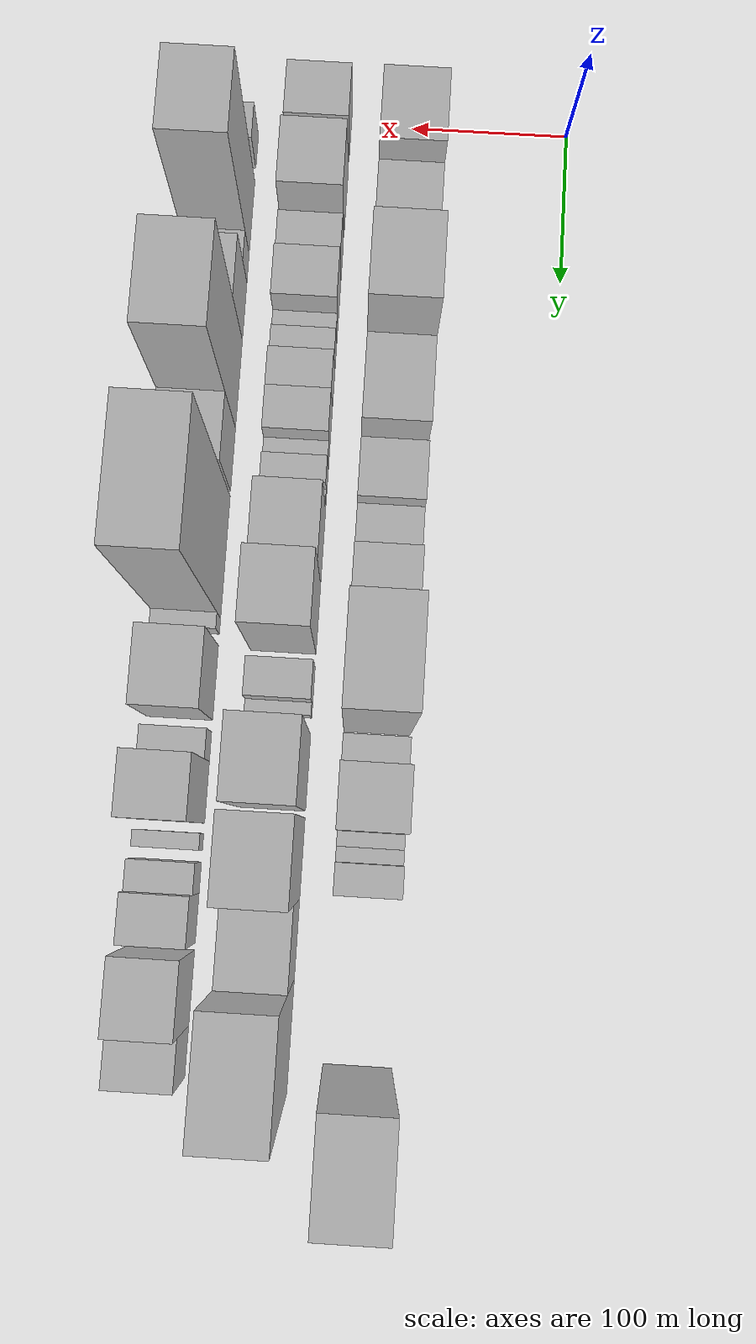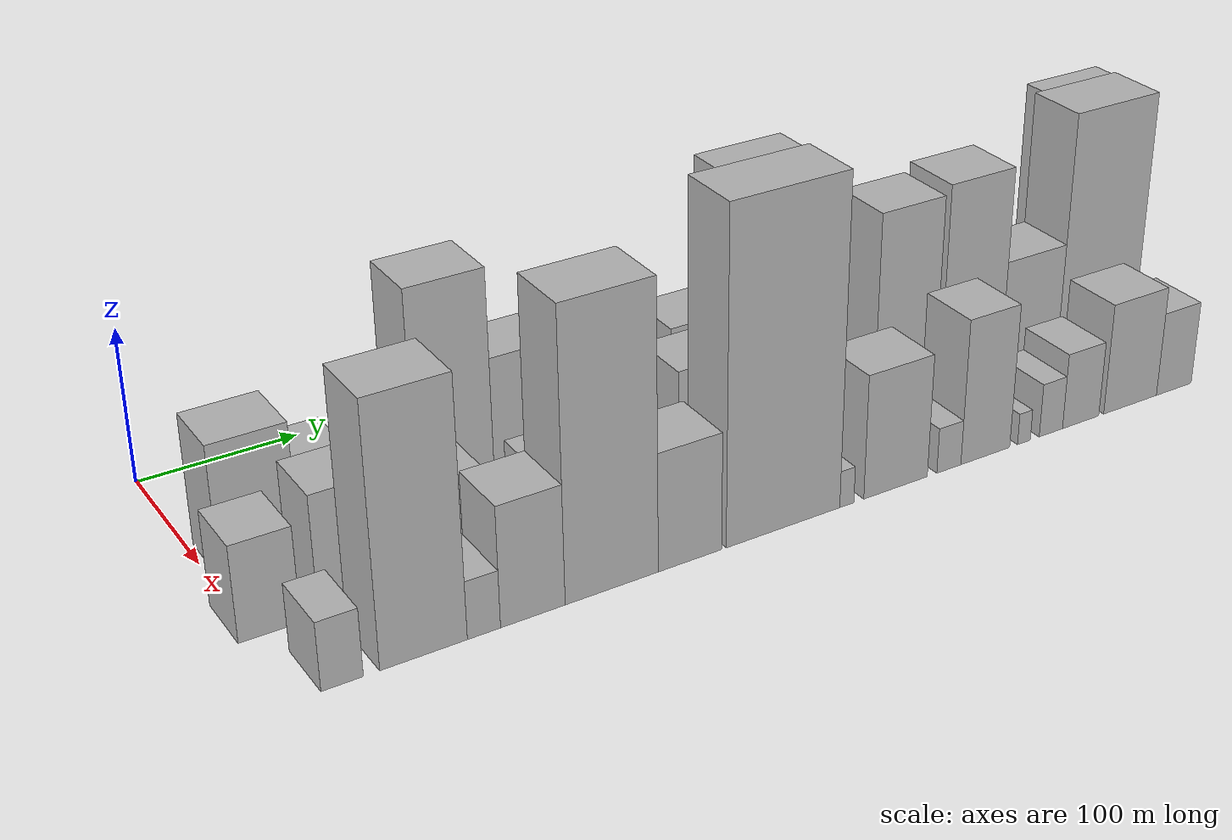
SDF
<sdf version="1.6">
 <world name="default">
  <model name="building_21">
   <static>1</static>
   <pose>100.0000 27.5766 0 0.000000 0.000000 0.000000</pose>
   <link name="link">
    <pose>0 0 42.00 0 0 0</pose>
    <collision name="collision"><geometry><box><size>40.0000 46.5783 84.0000</size></box></geometry></collision>
    <visual name="visual">
     <cast_shadows>0</cast_shadows>
     <geometry><box><size>40.0000 46.5783 84.0000</size></box></geometry>
     <material>
      <script>
       <uri>model://HANNAS_wall/materials/scripts</uri>
       <uri>model://HANNAS_wall/materials/textures</uri>
       <name>vrc/HANNAS_wall</name>
      </script>
     </material>
    </visual>
   </link>
  </model>
  <model name="building_22">
   <static>1</static>
   <pose>100.0000 67.4053 0 0.000000 0.000000 0.000000</pose>
   <link name="link">
    <pose>0 0 28.50 0 0 0</pose>
    <collision name="collision"><geometry><box><size>40.0000 33.0792 57.0000</size></box></geometry></collision>
    <visual name="visual">
     <cast_shadows>0</cast_shadows>
     <geometry><box><size>40.0000 33.0792 57.0000</size></box></geometry>
     <material>
      <script>
       <uri>model://HANNAS_wall/materials/scripts</uri>
       <uri>model://HANNAS_wall/materials/textures</uri>
       <name>vrc/HANNAS_wall</name>
      </script>
     </material>
    </visual>
   </link>
  </model>
  <model name="building_23">
   <static>1</static>
   <pose>100.0000 96.4477 0 0.000000 0.000000 0.000000</pose>
   <link name="link">
    <pose>0 0 21.00 0 0 0</pose>
    <collision name="collision"><geometry><box><size>40.0000 25.0056 42.0000</size></box></geometry></collision>
    <visual name="visual">
     <cast_shadows>0</cast_shadows>
     <geometry><box><size>40.0000 25.0056 42.0000</size></box></geometry>
     <material>
      <script>
       <uri>model://HANNAS_wall/materials/scripts</uri>
       <uri>model://HANNAS_wall/materials/textures</uri>
       <name>vrc/HANNAS_wall</name>
      </script>
     </material>
    </visual>
   </link>
  </model>
  <model name="building_24">
   <static>1</static>
   <pose>100.0000 112.5358 0 0.000000 0.000000 0.000000</pose>
   <link name="link">
    <pose>0 0 7.50 0 0 0</pose>
    <collision name="collision"><geometry><box><size>40.0000 7.1708 15.0000</size></box></geometry></collision>
    <visual name="visual">
     <cast_shadows>0</cast_shadows>
     <geometry><box><size>40.0000 7.1708 15.0000</size></box></geometry>
     <material>
      <script>
       <uri>model://HANNAS_wall/materials/scripts</uri>
       <uri>model://HANNAS_wall/materials/textures</uri>
       <name>vrc/HANNAS_wall</name>
      </script>
     </material>
    </visual>
   </link>
  </model>
  <model name="building_25">
   <static>1</static>
   <pose>100.0000 146.9329 0 0.000000 0.000000 0.000000</pose>
   <link name="link">
    <pose>0 0 72.00 0 0 0</pose>
    <collision name="collision"><geometry><box><size>40.0000 49.6233 144.0000</size></box></geometry></collision>
    <visual name="visual">
     <cast_shadows>0</cast_shadows>
     <geometry><box><size>40.0000 49.6233 144.0000</size></box></geometry>
     <material>
      <script>
       <uri>model://HANNAS_wall/materials/scripts</uri>
       <uri>model://HANNAS_wall/materials/textures</uri>
       <name>vrc/HANNAS_wall</name>
      </script>
     </material>
    </visual>
   </link>
  </model>
  <model name="building_26">
   <static>1</static>
   <pose>100.0000 197.2676 0 0.000000 0.000000 0.000000</pose>
   <link name="link">
    <pose>0 0 43.50 0 0 0</pose>
    <collision name="collision"><geometry><box><size>40.0000 51.0462 87.0000</size></box></geometry></collision>
    <visual name="visual">
     <cast_shadows>0</cast_shadows>
     <geometry><box><size>40.0000 51.0462 87.0000</size></box></geometry>
     <material>
      <script>
       <uri>model://HANNAS_wall/materials/scripts</uri>
       <uri>model://HANNAS_wall/materials/textures</uri>
       <name>vrc/HANNAS_wall</name>
      </script>
     </material>
    </visual>
   </link>
  </model>
  <model name="building_27">
   <static>1</static>
   <pose>100.0000 245.4375 0 0.000000 0.000000 0.000000</pose>
   <link name="link">
    <pose>0 0 33.00 0 0 0</pose>
    <collision name="collision"><geometry><box><size>40.0000 35.2936 66.0000</size></box></geometry></collision>
    <visual name="visual">
     <cast_shadows>0</cast_shadows>
     <geometry><box><size>40.0000 35.2936 66.0000</size></box></geometry>
     <material>
      <script>
       <uri>model://HANNAS_wall/materials/scripts</uri>
       <uri>model://HANNAS_wall/materials/textures</uri>
       <name>vrc/HANNAS_wall</name>
      </script>
     </material>
    </visual>
   </link>
  </model>
  <model name="building_28">
   <static>1</static>
   <pose>100.0000 277.1267 0 0.000000 0.000000 0.000000</pose>
   <link name="link">
    <pose>0 0 24.00 0 0 0</pose>
    <collision name="collision"><geometry><box><size>40.0000 28.0849 48.0000</size></box></geometry></collision>
    <visual name="visual">
     <cast_shadows>0</cast_shadows>
     <geometry><box><size>40.0000 28.0849 48.0000</size></box></geometry>
     <material>
      <script>
       <uri>model://HANNAS_wall/materials/scripts</uri>
       <uri>model://HANNAS_wall/materials/textures</uri>
       <name>vrc/HANNAS_wall</name>
      </script>
     </material>
    </visual>
   </link>
  </model>
  <model name="building_29">
   <static>1</static>
   <pose>100.0000 311.7803 0 0.000000 0.000000 0.000000</pose>
   <link name="link">
    <pose>0 0 36.00 0 0 0</pose>
    <collision name="collision"><geometry><box><size>40.0000 41.2224 72.0000</size></box></geometry></collision>
    <visual name="visual">
     <cast_shadows>0</cast_shadows>
     <geometry><box><size>40.0000 41.2224 72.0000</size></box></geometry>
     <material>
      <script>
       <uri>model://HANNAS_wall/materials/scripts</uri>
       <uri>model://HANNAS_wall/materials/textures</uri>
       <name>vrc/HANNAS_wall</name>
      </script>
     </material>
    </visual>
   </link>
  </model>
  <model name="building_30">
   <static>1</static>
   <pose>100.0000 363.3565 0 0.000000 0.000000 0.000000</pose>
   <link name="link">
    <pose>0 0 79.50 0 0 0</pose>
    <collision name="collision"><geometry><box><size>40.0000 61.9299 159.0000</size></box></geometry></collision>
    <visual name="visual">
     <cast_shadows>0</cast_shadows>
     <geometry><box><size>40.0000 61.9299 159.0000</size></box></geometry>
     <material>
      <script>
       <uri>model://HANNAS_wall/materials/scripts</uri>
       <uri>model://HANNAS_wall/materials/textures</uri>
       <name>vrc/HANNAS_wall</name>
      </script>
     </material>
    </visual>
   </link>
  </model>
  <model name="building_31">
   <static>1</static>
   <pose>100.0000 406.9446 0 0.000000 0.000000 0.000000</pose>
   <link name="link">
    <pose>0 0 16.50 0 0 0</pose>
    <collision name="collision"><geometry><box><size>40.0000 19.2463 33.0000</size></box></geometry></collision>
    <visual name="visual">
     <cast_shadows>0</cast_shadows>
     <geometry><box><size>40.0000 19.2463 33.0000</size></box></geometry>
     <material>
      <script>
       <uri>model://HANNAS_wall/materials/scripts</uri>
       <uri>model://HANNAS_wall/materials/textures</uri>
       <name>vrc/HANNAS_wall</name>
      </script>
     </material>
    </visual>
   </link>
  </model>
  <model name="building_32">
   <static>1</static>
   <pose>100.0000 435.1259 0 0.000000 0.000000 0.000000</pose>
   <link name="link">
    <pose>0 0 48.00 0 0 0</pose>
    <collision name="collision"><geometry><box><size>40.0000 37.1163 96.0000</size></box></geometry></collision>
    <visual name="visual">
     <cast_shadows>0</cast_shadows>
     <geometry><box><size>40.0000 37.1163 96.0000</size></box></geometry>
     <material>
      <script>
       <uri>model://HANNAS_wall/materials/scripts</uri>
       <uri>model://HANNAS_wall/materials/textures</uri>
       <name>vrc/HANNAS_wall</name>
      </script>
     </material>
    </visual>
   </link>
  </model>
  <model name="building_33">
   <static>1</static>
   <pose>100.0000 458.2078 0 0.000000 0.000000 0.000000</pose>
   <link name="link">
    <pose>0 0 10.50 0 0 0</pose>
    <collision name="collision"><geometry><box><size>40.0000 9.0475 21.0000</size></box></geometry></collision>
    <visual name="visual">
     <cast_shadows>0</cast_shadows>
     <geometry><box><size>40.0000 9.0475 21.0000</size></box></geometry>
     <material>
      <script>
       <uri>model://HANNAS_wall/materials/scripts</uri>
       <uri>model://HANNAS_wall/materials/textures</uri>
       <name>vrc/HANNAS_wall</name>
      </script>
     </material>
    </visual>
   </link>
  </model>
  <model name="building_34">
   <static>1</static>
   <pose>100.0000 467.2337 0 0.000000 0.000000 0.000000</pose>
   <link name="link">
    <pose>0 0 10.50 0 0 0</pose>
    <collision name="collision"><geometry><box><size>40.0000 9.0043 21.0000</size></box></geometry></collision>
    <visual name="visual">
     <cast_shadows>0</cast_shadows>
     <geometry><box><size>40.0000 9.0043 21.0000</size></box></geometry>
     <material>
      <script>
       <uri>model://HANNAS_wall/materials/scripts</uri>
       <uri>model://HANNAS_wall/materials/textures</uri>
       <name>vrc/HANNAS_wall</name>
      </script>
     </material>
    </visual>
   </link>
  </model>
  <model name="building_35">
   <static>1</static>
   <pose>100.0000 481.1040 0 0.000000 0.000000 0.000000</pose>
   <link name="link">
    <pose>0 0 18.00 0 0 0</pose>
    <collision name="collision"><geometry><box><size>40.0000 18.7363 36.0000</size></box></geometry></collision>
    <visual name="visual">
     <cast_shadows>0</cast_shadows>
     <geometry><box><size>40.0000 18.7363 36.0000</size></box></geometry>
     <material>
      <script>
       <uri>model://HANNAS_wall/materials/scripts</uri>
       <uri>model://HANNAS_wall/materials/textures</uri>
       <name>vrc/HANNAS_wall</name>
      </script>
     </material>
    </visual>
   </link>
  </model>
  <model name="building_36">
   <static>1</static>
   <pose>100.0000 617.7021 0 0.000000 0.000000 0.000000</pose>
   <link name="link">
    <pose>0 0 75.00 0 0 0</pose>
    <collision name="collision"><geometry><box><size>40.0000 58.8200 150.0000</size></box></geometry></collision>
    <visual name="visual">
     <cast_shadows>0</cast_shadows>
     <geometry><box><size>40.0000 58.8200 150.0000</size></box></geometry>
     <material>
      <script>
       <uri>model://HANNAS_wall/materials/scripts</uri>
       <uri>model://HANNAS_wall/materials/textures</uri>
       <name>vrc/HANNAS_wall</name>
      </script>
     </material>
    </visual>
   </link>
  </model>
  <model name="building_50">
   <static>1</static>
   <pose>160.0000 8.1634 0 0.000000 0.000000 0.000000</pose>
   <link name="link">
    <pose>0 0 30.00 0 0 0</pose>
    <collision name="collision"><geometry><box><size>40.0000 34.8651 60.0000</size></box></geometry></collision>
    <visual name="visual">
     <cast_shadows>0</cast_shadows>
     <geometry><box><size>40.0000 34.8651 60.0000</size></box></geometry>
     <material>
      <script>
       <uri>model://HANNAS_wall/materials/scripts</uri>
       <uri>model://HANNAS_wall/materials/textures</uri>
       <name>vrc/HANNAS_wall</name>
      </script>
     </material>
    </visual>
   </link>
  </model>
  <model name="building_51">
   <static>1</static>
   <pose>160.0000 56.6697 0 0.000000 0.000000 0.000000</pose>
   <link name="link">
    <pose>0 0 37.50 0 0 0</pose>
    <collision name="collision"><geometry><box><size>40.0000 42.1474 75.0000</size></box></geometry></collision>
    <visual name="visual">
     <cast_shadows>0</cast_shadows>
     <geometry><box><size>40.0000 42.1474 75.0000</size></box></geometry>
     <material>
      <script>
       <uri>model://HANNAS_wall/materials/scripts</uri>
       <uri>model://HANNAS_wall/materials/textures</uri>
       <name>vrc/HANNAS_wall</name>
      </script>
     </material>
    </visual>
   </link>
  </model>
  <model name="building_52">
   <static>1</static>
   <pose>160.0000 94.5605 0 0.000000 0.000000 0.000000</pose>
   <link name="link">
    <pose>0 0 22.50 0 0 0</pose>
    <collision name="collision"><geometry><box><size>40.0000 25.6343 45.0000</size></box></geometry></collision>
    <visual name="visual">
     <cast_shadows>0</cast_shadows>
     <geometry><box><size>40.0000 25.6343 45.0000</size></box></geometry>
     <material>
      <script>
       <uri>model://HANNAS_wall/materials/scripts</uri>
       <uri>model://HANNAS_wall/materials/textures</uri>
       <name>vrc/HANNAS_wall</name>
      </script>
     </material>
    </visual>
   </link>
  </model>
  <model name="building_53">
   <static>1</static>
   <pose>160.0000 123.2972 0 0.000000 0.000000 0.000000</pose>
   <link name="link">
    <pose>0 0 27.00 0 0 0</pose>
    <collision name="collision"><geometry><box><size>40.0000 31.8391 54.0000</size></box></geometry></collision>
    <visual name="visual">
     <cast_shadows>0</cast_shadows>
     <geometry><box><size>40.0000 31.8391 54.0000</size></box></geometry>
     <material>
      <script>
       <uri>model://HANNAS_wall/materials/scripts</uri>
       <uri>model://HANNAS_wall/materials/textures</uri>
       <name>vrc/HANNAS_wall</name>
      </script>
     </material>
    </visual>
   </link>
  </model>
  <model name="building_54">
   <static>1</static>
   <pose>160.0000 145.0612 0 0.000000 0.000000 0.000000</pose>
   <link name="link">
    <pose>0 0 13.50 0 0 0</pose>
    <collision name="collision"><geometry><box><size>40.0000 11.6888 27.0000</size></box></geometry></collision>
    <visual name="visual">
     <cast_shadows>0</cast_shadows>
     <geometry><box><size>40.0000 11.6888 27.0000</size></box></geometry>
     <material>
      <script>
       <uri>model://HANNAS_wall/materials/scripts</uri>
       <uri>model://HANNAS_wall/materials/textures</uri>
       <name>vrc/HANNAS_wall</name>
      </script>
     </material>
    </visual>
   </link>
  </model>
  <model name="building_55">
   <static>1</static>
   <pose>160.0000 159.8729 0 0.000000 0.000000 0.000000</pose>
   <link name="link">
    <pose>0 0 16.50 0 0 0</pose>
    <collision name="collision"><geometry><box><size>40.0000 17.9346 33.0000</size></box></geometry></collision>
    <visual name="visual">
     <cast_shadows>0</cast_shadows>
     <geometry><box><size>40.0000 17.9346 33.0000</size></box></geometry>
     <material>
      <script>
       <uri>model://HANNAS_wall/materials/scripts</uri>
       <uri>model://HANNAS_wall/materials/textures</uri>
       <name>vrc/HANNAS_wall</name>
      </script>
     </material>
    </visual>
   </link>
  </model>
  <model name="building_56">
   <static>1</static>
   <pose>160.0000 180.9323 0 0.000000 0.000000 0.000000</pose>
   <link name="link">
    <pose>0 0 22.50 0 0 0</pose>
    <collision name="collision"><geometry><box><size>40.0000 24.1842 45.0000</size></box></geometry></collision>
    <visual name="visual">
     <cast_shadows>0</cast_shadows>
     <geometry><box><size>40.0000 24.1842 45.0000</size></box></geometry>
     <material>
      <script>
       <uri>model://HANNAS_wall/materials/scripts</uri>
       <uri>model://HANNAS_wall/materials/textures</uri>
       <name>vrc/HANNAS_wall</name>
      </script>
     </material>
    </visual>
   </link>
  </model>
  <model name="building_57">
   <static>1</static>
   <pose>160.0000 206.4219 0 0.000000 0.000000 0.000000</pose>
   <link name="link">
    <pose>0 0 22.50 0 0 0</pose>
    <collision name="collision"><geometry><box><size>40.0000 26.7950 45.0000</size></box></geometry></collision>
    <visual name="visual">
     <cast_shadows>0</cast_shadows>
     <geometry><box><size>40.0000 26.7950 45.0000</size></box></geometry>
     <material>
      <script>
       <uri>model://HANNAS_wall/materials/scripts</uri>
       <uri>model://HANNAS_wall/materials/textures</uri>
       <name>vrc/HANNAS_wall</name>
      </script>
     </material>
    </visual>
   </link>
  </model>
  <model name="building_58">
   <static>1</static>
   <pose>160.0000 225.6289 0 0.000000 0.000000 0.000000</pose>
   <link name="link">
    <pose>0 0 12.00 0 0 0</pose>
    <collision name="collision"><geometry><box><size>40.0000 11.6191 24.0000</size></box></geometry></collision>
    <visual name="visual">
     <cast_shadows>0</cast_shadows>
     <geometry><box><size>40.0000 11.6191 24.0000</size></box></geometry>
     <material>
      <script>
       <uri>model://HANNAS_wall/materials/scripts</uri>
       <uri>model://HANNAS_wall/materials/textures</uri>
       <name>vrc/HANNAS_wall</name>
      </script>
     </material>
    </visual>
   </link>
  </model>
  <model name="building_59">
   <static>1</static>
   <pose>160.0000 239.7943 0 0.000000 0.000000 0.000000</pose>
   <link name="link">
    <pose>0 0 16.50 0 0 0</pose>
    <collision name="collision"><geometry><box><size>40.0000 16.7116 33.0000</size></box></geometry></collision>
    <visual name="visual">
     <cast_shadows>0</cast_shadows>
     <geometry><box><size>40.0000 16.7116 33.0000</size></box></geometry>
     <material>
      <script>
       <uri>model://HANNAS_wall/materials/scripts</uri>
       <uri>model://HANNAS_wall/materials/textures</uri>
       <name>vrc/HANNAS_wall</name>
      </script>
     </material>
    </visual>
   </link>
  </model>
  <model name="building_60">
   <static>1</static>
   <pose>160.0000 251.5282 0 0.000000 0.000000 0.000000</pose>
   <link name="link">
    <pose>0 0 7.50 0 0 0</pose>
    <collision name="collision"><geometry><box><size>40.0000 6.7561 15.0000</size></box></geometry></collision>
    <visual name="visual">
     <cast_shadows>0</cast_shadows>
     <geometry><box><size>40.0000 6.7561 15.0000</size></box></geometry>
     <material>
      <script>
       <uri>model://HANNAS_wall/materials/scripts</uri>
       <uri>model://HANNAS_wall/materials/textures</uri>
       <name>vrc/HANNAS_wall</name>
      </script>
     </material>
    </visual>
   </link>
  </model>
  <model name="building_61">
   <static>1</static>
   <pose>160.0000 282.0630 0 0.000000 0.000000 0.000000</pose>
   <link name="link">
    <pose>0 0 40.50 0 0 0</pose>
    <collision name="collision"><geometry><box><size>40.0000 46.3135 81.0000</size></box></geometry></collision>
    <visual name="visual">
     <cast_shadows>0</cast_shadows>
     <geometry><box><size>40.0000 46.3135 81.0000</size></box></geometry>
     <material>
      <script>
       <uri>model://HANNAS_wall/materials/scripts</uri>
       <uri>model://HANNAS_wall/materials/textures</uri>
       <name>vrc/HANNAS_wall</name>
      </script>
     </material>
    </visual>
   </link>
  </model>
  <model name="building_62">
   <static>1</static>
   <pose>160.0000 326.7425 0 0.000000 0.000000 0.000000</pose>
   <link name="link">
    <pose>0 0 58.50 0 0 0</pose>
    <collision name="collision"><geometry><box><size>40.0000 43.0454 117.0000</size></box></geometry></collision>
    <visual name="visual">
     <cast_shadows>0</cast_shadows>
     <geometry><box><size>40.0000 43.0454 117.0000</size></box></geometry>
     <material>
      <script>
       <uri>model://HANNAS_wall/materials/scripts</uri>
       <uri>model://HANNAS_wall/materials/textures</uri>
       <name>vrc/HANNAS_wall</name>
      </script>
     </material>
    </visual>
   </link>
  </model>
  <model name="building_63">
   <static>1</static>
   <pose>160.0000 367.9208 0 0.000000 0.000000 0.000000</pose>
   <link name="link">
    <pose>0 0 19.50 0 0 0</pose>
    <collision name="collision"><geometry><box><size>40.0000 23.3112 39.0000</size></box></geometry></collision>
    <visual name="visual">
     <cast_shadows>0</cast_shadows>
     <geometry><box><size>40.0000 23.3112 39.0000</size></box></geometry>
     <material>
      <script>
       <uri>model://HANNAS_wall/materials/scripts</uri>
       <uri>model://HANNAS_wall/materials/textures</uri>
       <name>vrc/HANNAS_wall</name>
      </script>
     </material>
    </visual>
   </link>
  </model>
  <model name="building_64">
   <static>1</static>
   <pose>160.0000 383.5094 0 0.000000 0.000000 0.000000</pose>
   <link name="link">
    <pose>0 0 9.00 0 0 0</pose>
    <collision name="collision"><geometry><box><size>40.0000 7.8660 18.0000</size></box></geometry></collision>
    <visual name="visual">
     <cast_shadows>0</cast_shadows>
     <geometry><box><size>40.0000 7.8660 18.0000</size></box></geometry>
     <material>
      <script>
       <uri>model://HANNAS_wall/materials/scripts</uri>
       <uri>model://HANNAS_wall/materials/textures</uri>
       <name>vrc/HANNAS_wall</name>
      </script>
     </material>
    </visual>
   </link>
  </model>
  <model name="building_65">
   <static>1</static>
   <pose>160.0000 420.4469 0 0.000000 0.000000 0.000000</pose>
   <link name="link">
    <pose>0 0 72.00 0 0 0</pose>
    <collision name="collision"><geometry><box><size>40.0000 46.0089 144.0000</size></box></geometry></collision>
    <visual name="visual">
     <cast_shadows>0</cast_shadows>
     <geometry><box><size>40.0000 46.0089 144.0000</size></box></geometry>
     <material>
      <script>
       <uri>model://HANNAS_wall/materials/scripts</uri>
       <uri>model://HANNAS_wall/materials/textures</uri>
       <name>vrc/HANNAS_wall</name>
      </script>
     </material>
    </visual>
   </link>
  </model>
  <model name="building_66">
   <static>1</static>
   <pose>160.0000 471.4389 0 0.000000 0.000000 0.000000</pose>
   <link name="link">
    <pose>0 0 75.00 0 0 0</pose>
    <collision name="collision"><geometry><box><size>40.0000 47.9753 150.0000</size></box></geometry></collision>
    <visual name="visual">
     <cast_shadows>0</cast_shadows>
     <geometry><box><size>40.0000 47.9753 150.0000</size></box></geometry>
     <material>
      <script>
       <uri>model://HANNAS_wall/materials/scripts</uri>
       <uri>model://HANNAS_wall/materials/textures</uri>
       <name>vrc/HANNAS_wall</name>
      </script>
     </material>
    </visual>
   </link>
  </model>
  <model name="building_67">
   <static>1</static>
   <pose>160.0000 518.5741 0 0.000000 0.000000 0.000000</pose>
   <link name="link">
    <pose>0 0 43.50 0 0 0</pose>
    <collision name="collision"><geometry><box><size>40.0000 46.2950 87.0000</size></box></geometry></collision>
    <visual name="visual">
     <cast_shadows>0</cast_shadows>
     <geometry><box><size>40.0000 46.2950 87.0000</size></box></geometry>
     <material>
      <script>
       <uri>model://HANNAS_wall/materials/scripts</uri>
       <uri>model://HANNAS_wall/materials/textures</uri>
       <name>vrc/HANNAS_wall</name>
      </script>
     </material>
    </visual>
   </link>
  </model>
  <model name="building_68">
   <static>1</static>
   <pose>160.0000 574.1428 0 0.000000 0.000000 0.000000</pose>
   <link name="link">
    <pose>0 0 87.00 0 0 0</pose>
    <collision name="collision"><geometry><box><size>40.0000 64.8425 174.0000</size></box></geometry></collision>
    <visual name="visual">
     <cast_shadows>0</cast_shadows>
     <geometry><box><size>40.0000 64.8425 174.0000</size></box></geometry>
     <material>
      <script>
       <uri>model://HANNAS_wall/materials/scripts</uri>
       <uri>model://HANNAS_wall/materials/textures</uri>
       <name>vrc/HANNAS_wall</name>
      </script>
     </material>
    </visual>
   </link>
  </model>
  <model name="building_86">
   <static>1</static>
   <pose>220.0000 22.1825 0 0.000000 0.000000 0.000000</pose>
   <link name="link">
    <pose>0 0 21.00 0 0 0</pose>
    <collision name="collision"><geometry><box><size>40.0000 23.2316 42.0000</size></box></geometry></collision>
    <visual name="visual">
     <cast_shadows>0</cast_shadows>
     <geometry><box><size>40.0000 23.2316 42.0000</size></box></geometry>
     <material>
      <script>
       <uri>model://HANNAS_wall/materials/scripts</uri>
       <uri>model://HANNAS_wall/materials/textures</uri>
       <name>vrc/HANNAS_wall</name>
      </script>
     </material>
    </visual>
   </link>
  </model>
  <model name="building_87">
   <static>1</static>
   <pose>220.0000 67.6703 0 0.000000 0.000000 0.000000</pose>
   <link name="link">
    <pose>0 0 79.50 0 0 0</pose>
    <collision name="collision"><geometry><box><size>40.0000 49.7440 159.0000</size></box></geometry></collision>
    <visual name="visual">
     <cast_shadows>0</cast_shadows>
     <geometry><box><size>40.0000 49.7440 159.0000</size></box></geometry>
     <material>
      <script>
       <uri>model://HANNAS_wall/materials/scripts</uri>
       <uri>model://HANNAS_wall/materials/textures</uri>
       <name>vrc/HANNAS_wall</name>
      </script>
     </material>
    </visual>
   </link>
  </model>
  <model name="building_88">
   <static>1</static>
   <pose>220.0000 102.2261 0 0.000000 0.000000 0.000000</pose>
   <link name="link">
    <pose>0 0 18.00 0 0 0</pose>
    <collision name="collision"><geometry><box><size>40.0000 19.3676 36.0000</size></box></geometry></collision>
    <visual name="visual">
     <cast_shadows>0</cast_shadows>
     <geometry><box><size>40.0000 19.3676 36.0000</size></box></geometry>
     <material>
      <script>
       <uri>model://HANNAS_wall/materials/scripts</uri>
       <uri>model://HANNAS_wall/materials/textures</uri>
       <name>vrc/HANNAS_wall</name>
      </script>
     </material>
    </visual>
   </link>
  </model>
  <model name="building_89">
   <static>1</static>
   <pose>220.0000 131.2483 0 0.000000 0.000000 0.000000</pose>
   <link name="link">
    <pose>0 0 37.50 0 0 0</pose>
    <collision name="collision"><geometry><box><size>40.0000 38.6767 75.0000</size></box></geometry></collision>
    <visual name="visual">
     <cast_shadows>0</cast_shadows>
     <geometry><box><size>40.0000 38.6767 75.0000</size></box></geometry>
     <material>
      <script>
       <uri>model://HANNAS_wall/materials/scripts</uri>
       <uri>model://HANNAS_wall/materials/textures</uri>
       <name>vrc/HANNAS_wall</name>
      </script>
     </material>
    </visual>
   </link>
  </model>
  <model name="building_90">
   <static>1</static>
   <pose>220.0000 179.5428 0 0.000000 0.000000 0.000000</pose>
   <link name="link">
    <pose>0 0 90.00 0 0 0</pose>
    <collision name="collision"><geometry><box><size>40.0000 57.9123 180.0000</size></box></geometry></collision>
    <visual name="visual">
     <cast_shadows>0</cast_shadows>
     <geometry><box><size>40.0000 57.9123 180.0000</size></box></geometry>
     <material>
      <script>
       <uri>model://HANNAS_wall/materials/scripts</uri>
       <uri>model://HANNAS_wall/materials/textures</uri>
       <name>vrc/HANNAS_wall</name>
      </script>
     </material>
    </visual>
   </link>
  </model>
  <model name="building_91">
   <static>1</static>
   <pose>220.0000 228.9958 0 0.000000 0.000000 0.000000</pose>
   <link name="link">
    <pose>0 0 37.50 0 0 0</pose>
    <collision name="collision"><geometry><box><size>40.0000 40.9938 75.0000</size></box></geometry></collision>
    <visual name="visual">
     <cast_shadows>0</cast_shadows>
     <geometry><box><size>40.0000 40.9938 75.0000</size></box></geometry>
     <material>
      <script>
       <uri>model://HANNAS_wall/materials/scripts</uri>
       <uri>model://HANNAS_wall/materials/textures</uri>
       <name>vrc/HANNAS_wall</name>
      </script>
     </material>
    </visual>
   </link>
  </model>
  <model name="building_92">
   <static>1</static>
   <pose>220.0000 291.0804 0 0.000000 0.000000 0.000000</pose>
   <link name="link">
    <pose>0 0 105.00 0 0 0</pose>
    <collision name="collision"><geometry><box><size>40.0000 77.1754 210.0000</size></box></geometry></collision>
    <visual name="visual">
     <cast_shadows>0</cast_shadows>
     <geometry><box><size>40.0000 77.1754 210.0000</size></box></geometry>
     <material>
      <script>
       <uri>model://HANNAS_wall/materials/scripts</uri>
       <uri>model://HANNAS_wall/materials/textures</uri>
       <name>vrc/HANNAS_wall</name>
      </script>
     </material>
    </visual>
   </link>
  </model>
  <model name="building_93">
   <static>1</static>
   <pose>220.0000 334.6288 0 0.000000 0.000000 0.000000</pose>
   <link name="link">
    <pose>0 0 12.00 0 0 0</pose>
    <collision name="collision"><geometry><box><size>40.0000 9.9213 24.0000</size></box></geometry></collision>
    <visual name="visual">
     <cast_shadows>0</cast_shadows>
     <geometry><box><size>40.0000 9.9213 24.0000</size></box></geometry>
     <material>
      <script>
       <uri>model://HANNAS_wall/materials/scripts</uri>
       <uri>model://HANNAS_wall/materials/textures</uri>
       <name>vrc/HANNAS_wall</name>
      </script>
     </material>
    </visual>
   </link>
  </model>
  <model name="building_94">
   <static>1</static>
   <pose>220.0000 369.5248 0 0.000000 0.000000 0.000000</pose>
   <link name="link">
    <pose>0 0 40.50 0 0 0</pose>
    <collision name="collision"><geometry><box><size>40.0000 45.8709 81.0000</size></box></geometry></collision>
    <visual name="visual">
     <cast_shadows>0</cast_shadows>
     <geometry><box><size>40.0000 45.8709 81.0000</size></box></geometry>
     <material>
      <script>
       <uri>model://HANNAS_wall/materials/scripts</uri>
       <uri>model://HANNAS_wall/materials/textures</uri>
       <name>vrc/HANNAS_wall</name>
      </script>
     </material>
    </visual>
   </link>
  </model>
  <model name="building_95">
   <static>1</static>
   <pose>220.0000 408.3904 0 0.000000 0.000000 0.000000</pose>
   <link name="link">
    <pose>0 0 15.00 0 0 0</pose>
    <collision name="collision"><geometry><box><size>40.0000 17.8604 30.0000</size></box></geometry></collision>
    <visual name="visual">
     <cast_shadows>0</cast_shadows>
     <geometry><box><size>40.0000 17.8604 30.0000</size></box></geometry>
     <material>
      <script>
       <uri>model://HANNAS_wall/materials/scripts</uri>
       <uri>model://HANNAS_wall/materials/textures</uri>
       <name>vrc/HANNAS_wall</name>
      </script>
     </material>
    </visual>
   </link>
  </model>
  <model name="building_96">
   <static>1</static>
   <pose>220.0000 435.8265 0 0.000000 0.000000 0.000000</pose>
   <link name="link">
    <pose>0 0 48.00 0 0 0</pose>
    <collision name="collision"><geometry><box><size>40.0000 37.0117 96.0000</size></box></geometry></collision>
    <visual name="visual">
     <cast_shadows>0</cast_shadows>
     <geometry><box><size>40.0000 37.0117 96.0000</size></box></geometry>
     <material>
      <script>
       <uri>model://HANNAS_wall/materials/scripts</uri>
       <uri>model://HANNAS_wall/materials/textures</uri>
       <name>vrc/HANNAS_wall</name>
      </script>
     </material>
    </visual>
   </link>
  </model>
  <model name="building_97">
   <static>1</static>
   <pose>220.0000 465.2667 0 0.000000 0.000000 0.000000</pose>
   <link name="link">
    <pose>0 0 10.50 0 0 0</pose>
    <collision name="collision"><geometry><box><size>40.0000 9.8688 21.0000</size></box></geometry></collision>
    <visual name="visual">
     <cast_shadows>0</cast_shadows>
     <geometry><box><size>40.0000 9.8688 21.0000</size></box></geometry>
     <material>
      <script>
       <uri>model://HANNAS_wall/materials/scripts</uri>
       <uri>model://HANNAS_wall/materials/textures</uri>
       <name>vrc/HANNAS_wall</name>
      </script>
     </material>
    </visual>
   </link>
  </model>
  <model name="building_98">
   <static>1</static>
   <pose>220.0000 486.3419 0 0.000000 0.000000 0.000000</pose>
   <link name="link">
    <pose>0 0 18.00 0 0 0</pose>
    <collision name="collision"><geometry><box><size>40.0000 18.2816 36.0000</size></box></geometry></collision>
    <visual name="visual">
     <cast_shadows>0</cast_shadows>
     <geometry><box><size>40.0000 18.2816 36.0000</size></box></geometry>
     <material>
      <script>
       <uri>model://HANNAS_wall/materials/scripts</uri>
       <uri>model://HANNAS_wall/materials/textures</uri>
       <name>vrc/HANNAS_wall</name>
      </script>
     </material>
    </visual>
   </link>
  </model>
  <model name="building_99">
   <static>1</static>
   <pose>220.0000 510.0037 0 0.000000 0.000000 0.000000</pose>
   <link name="link">
    <pose>0 0 25.50 0 0 0</pose>
    <collision name="collision"><geometry><box><size>40.0000 29.0422 51.0000</size></box></geometry></collision>
    <visual name="visual">
     <cast_shadows>0</cast_shadows>
     <geometry><box><size>40.0000 29.0422 51.0000</size></box></geometry>
     <material>
      <script>
       <uri>model://HANNAS_wall/materials/scripts</uri>
       <uri>model://HANNAS_wall/materials/textures</uri>
       <name>vrc/HANNAS_wall</name>
      </script>
     </material>
    </visual>
   </link>
  </model>
  <model name="building_100">
   <static>1</static>
   <pose>220.0000 550.2133 0 0.000000 0.000000 0.000000</pose>
   <link name="link">
    <pose>0 0 37.50 0 0 0</pose>
    <collision name="collision"><geometry><box><size>40.0000 43.3769 75.0000</size></box></geometry></collision>
    <visual name="visual">
     <cast_shadows>0</cast_shadows>
     <geometry><box><size>40.0000 43.3769 75.0000</size></box></geometry>
     <material>
      <script>
       <uri>model://HANNAS_wall/materials/scripts</uri>
       <uri>model://HANNAS_wall/materials/textures</uri>
       <name>vrc/HANNAS_wall</name>
      </script>
     </material>
    </visual>
   </link>
  </model>
  <model name="building_101">
   <static>1</static>
   <pose>220.0000 586.5383 0 0.000000 0.000000 0.000000</pose>
   <link name="link">
    <pose>0 0 28.50 0 0 0</pose>
    <collision name="collision"><geometry><box><size>40.0000 29.2733 57.0000</size></box></geometry></collision>
    <visual name="visual">
     <cast_shadows>0</cast_shadows>
     <geometry><box><size>40.0000 29.2733 57.0000</size></box></geometry>
     <material>
      <script>
       <uri>model://HANNAS_wall/materials/scripts</uri>
       <uri>model://HANNAS_wall/materials/textures</uri>
       <name>vrc/HANNAS_wall</name>
      </script>
     </material>
    </visual>
   </link>
  </model>
 </world>
</sdf>
